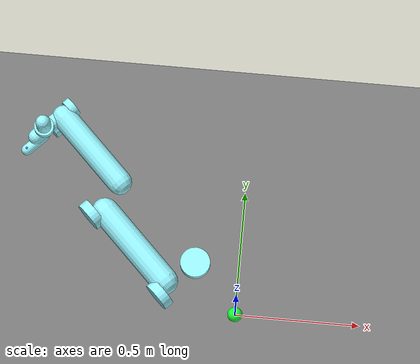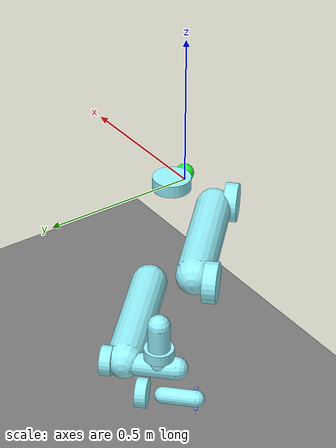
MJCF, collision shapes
<mujoco model="ur5">
    <compiler angle="radian" meshdir="meshes" />

    <option gravity="0 0 0" cone="elliptic" timestep="0.02" />

    <size njmax="500" nconmax="100" />

    <visual>
        <map znear="0.001" />
    </visual>

    <default>
        <light castshadow="false" diffuse="1 1 1" />
        <joint frictionloss="1" damping="1" />
        <camera fovy="60" />
        <motor gear="0.8"/>
        <velocity kv="10"/>
        <position kp="5"/>
    </default>

    <asset>
        <mesh file="base.stl" />
        <mesh file="shoulder.stl" />
        <mesh file="upperarm.stl" />
        <mesh file="forearm.stl" />
        <mesh file="wrist1.stl" />
        <mesh file="wrist2.stl" />
        <mesh file="wrist3.stl" />
        <mesh file="kinova_robotiq_coupler.stl" />
        <mesh file="robotiq_85_base_link.stl" />
        <mesh file="robotiq_85_finger_link.stl" />
        <mesh file="robotiq_85_finger_tip_link.stl" />
        <mesh file="robotiq_85_inner_knuckle_link.stl" />
        <mesh file="robotiq_85_knuckle_link.stl" />
        <material name="RobMat" specular="0.9" shininess="0.5" reflectance="0" rgba="0.7 0.7 0.7 1" emission="0.1" />
        <material name="GriMat" specular="0.9" shininess="0.5" reflectance="0" rgba="0.1 0.1 0.1 1" emission="0.1" />
        <material name="BasketMat" specular="0" shininess="0" reflectance="0" rgba="0.26 0.16 0.16796875 1" emission="0" />
        <material name="Light" specular="0" shininess="0.6" reflectance="0.9" rgba="0.5 0.5 1 1" emission="0.7" />
        <texture name="sky_tex" type="skybox" builtin="gradient" width="512" height="512" rgb1="0.86 0.90 0.98" rgb2="0.22 0.28 0.36" />
        <texture name="plane_tex" type="2d" builtin="checker" width="256" height="256" rgb1="0.12 0.12 0.12" rgb2="0.84 0.84 0.84" mark="cross" markrgb="0.8 0.8 0.8" />
        <material name="plane_mat" reflectance="0.3" texture="plane_tex" texrepeat="4 4" texuniform="true" />
    </asset>

    <worldbody>
        <body pos="-0.16 0.90 0.02" euler="4.71238898 0 3.14159265">
            <body euler="0 -0.82 0">
                <camera name="workbench_camera" euler="0.25 0 0" fovy="43" />
            </body>
        </body>
        <body pos="-1 1.52 0.64" euler="4.71238898 0 3.14159265">
            <body euler="-0.23 0 0">
                <camera name="upper_camera" euler="0 0.09 0" fovy="41" />
            </body>
        </body>

        <light directional="true" ambient=".3 .3 .3" pos="30 30 30" dir="0 -.5 -1" diffuse=".5 .5 .5" specular=".5 .5 .5" />
        <light directional="false" pos="-0.5 0.5 1.5" dir="0 -1 0" diffuse=".3 .3 .3" specular=".2 .2 .2" />
        <geom name="workbench_down" pos="-0.6 0.6 -0.25" size="0.6 0.6 0.25" type="box" rgba="0 0 0 0" material="BasketMat" contype="0" conaffinity="0" />
        <geom name="floor" pos="0 0 -0.66" size="0 0 0.25" type="plane" material="plane_mat" contype="1" conaffinity="1" />
        <geom name="wall_1" pos="0 -1.4 1" size="2.5 2.5 1" type="plane" quat="0.707107 -0.707107 0 0" rgba="0.95 0.95 0.95 0" material="BasketMat" contype="0" conaffinity="0" />
        <geom name="wall_2" pos="-2.185 0 1" size="2.5 2.5 1" type="plane" quat="0.707107 0 0.707107 0" rgba="0.95 0.95 0.95 0" material="BasketMat" contype="0" conaffinity="0" />

        <body name="base_link" pos="-0.175 0.175 0" quat="0.3826834324 0 0 0.9238795325" >
            <inertial pos="0 0 0" quat="0.5 0.5 -0.5 0.5" mass="4" diaginertia="0.0072 0.00443333 0.00443333" />
            <geom name="base_mesh" type="mesh" mesh="base" material="RobMat" contype="0" conaffinity="0" />
            <geom name="base_cap" type="cylinder" pos="0 0 0.14" size="0.06 0.02" rgba="0.596 0.96 1 1" material="RobMat" />

            <body name="shoulder_link" pos="0 0 0.089159">
                <inertial pos="0 0 0" mass="3.7" diaginertia="0.0102675 0.0102675 0.00666" />
                <geom name="shoulder_mesh" type="mesh" mesh="shoulder" material="RobMat" contype="0" conaffinity="0" />
                <geom name="shoulder_cap" type="cylinder" pos="0 0.185 0" quat="0.707107 0.707107 0 0" size="0.06 0.02" rgba="0.596 0.96 1 1" material="RobMat" />
                <joint name="joint1" pos="0 0 0" axis="0 0 1" />

                <body name="upper_arm_link" pos="0 0.13585 0" quat="0.707107 0 0.707107 0">
                    <inertial pos="0 0 0.28" mass="8.393" diaginertia="0.226891 0.226891 0.0151074" />
                    <geom name="upperarm_mesh" type="mesh" mesh="upperarm" material="RobMat" contype="0" conaffinity="0" />
                    <geom name="upperarm_col" type="capsule" fromto="0 0 0.03 0 0 0.40" size="0.055" rgba="0.596 0.96 1 0.0" material="RobMat" />
                    <joint name="joint2" pos="0 0 0" axis="0 1 0" />

                    <body name="forearm_link" pos="0 -0.1197 0.425">
                        <inertial pos="0 0 0.25" mass="2.275" diaginertia="0.0494433 0.0494433 0.004095" />
                        <geom name="forearm_mesh" type="mesh" mesh="forearm" material="RobMat" contype="0" conaffinity="0" />

                        <!--camera name="forearm_camera" pos="0 0.1 0.07" euler="3.14159265 0 1.570796" /-->

                        <geom name="forearm_cap" type="cylinder" pos="0 0.17 0" quat="0.707107 0.707107 0 0" size="0.06 0.02" rgba="0.596 0.96 1 1" material="RobMat" />
                        <geom name="forearm_col" type="capsule" fromto="0 0 0.03 0 0 0.38" size="0.05" rgba="0.596 0.96 1 0.0" material="RobMat" />
                        <joint name="joint3" pos="0 0 0" axis="0 1 0" />

                        <body name="wrist1_link" pos="0 0 0.39225" quat="0.707107 0 0.707107 0">
                            <inertial pos="0 0 0" quat="0.5 0.5 -0.5 0.5" mass="1.219" diaginertia="0.21942 0.111173 0.111173" />
                            <geom name="wrist1_mesh" type="mesh" mesh="wrist1" material="RobMat" contype="0" conaffinity="0" />
                            <geom name="wrist1_cap" type="cylinder" pos="0 -0.045 0" quat="0.707107 0.707107 0 0" size="0.04 0.015" rgba="0.596 0.96 1 1" material="RobMat" />
                            <geom name="wrist1_col" type="capsule" fromto="0 0.01 0 0 0.14 0" size="0.03" rgba="0.596 0.96 1 0.0" material="RobMat" />
                            <joint name="joint4" pos="0 0 0" axis="0 1 0" />

                            <body name="wrist2_link" pos="0 0.093 0">
                                <inertial pos="0 0 0" quat="0.5 0.5 -0.5 0.5" mass="1.219" diaginertia="0.21942 0.111173 0.111173" />
                                <geom name="wrist2_mesh" type="mesh" mesh="wrist2" material="RobMat" contype="0" conaffinity="0" />
                                <geom name="wrist2_cap" type="cylinder" pos="0 0 -0.045" quat="0.707107 0 0 0.707107" size="0.04 0.015" rgba="0.596 0.96 1 1" material="RobMat" />
                                <geom name="wrist2_col" type="capsule" fromto="0 0 -0.01 0 0 -0.13" size="0.03" rgba="0.596 0.96 1 0.0" material="RobMat" />
                                <joint name="joint5" pos="0 0 0" axis="0 0 1" />

                                <body name="wrist3_link" pos="0 0 0.09465" quat="0.707107 0 -0.707107 0" >
                                    <inertial pos="0 0 0" quat="0.5 0.5 -0.5 0.5" mass="0.1879" diaginertia="0.033822 0.0171365 0.0171365" />
                                    <geom name="wrist3_mesh" type="mesh" mesh="wrist3" material="RobMat" contype="0" conaffinity="0" />
                                    <geom name="wrist3_cap" type="cylinder" pos="0 -0.045 0" quat="0.707107 0.707107 0 0" size="0.04 0.015" rgba="0.596 0.96 1 1" material="RobMat" />
                                    <geom name="wrist3_col" type="capsule" fromto="0 0.01 0 0 0.10 0" size="0.022" rgba="0.596 0.96 1 0.0" material="RobMat" />
                                    <joint name="joint6" pos="0 0 0" axis="0 1 0" />

                                    <body name="ee_link" pos="0 0.0823 0" quat="0.707107 -0.707107 0 0">
                                        <inertial pos="0 0 0" mass="0.15" diaginertia="0.0001 0.0001 0.0001" />

                                        <!--camera name="gripper_camera" euler="0 3.14159265 0" fovy="63.5" /-->
                                        <geom name="light_1" type="sphere" size="0.005" pos="0.035 0 0.0166" material="Light" contype="0" conaffinity="0" />
                                        <geom name="light_2" type="sphere" size="0.005" pos="-0.035 0 0.0166" material="Light" contype="0" conaffinity="0" />
                                        <!--
                                        原来的 Robotiq 夹爪整段先从主线模型里拿掉。
                                        当前任务只保留一个简单的末端参考体，训练时用 ee_link 原点作为参考点。
                                        -->
                                        <geom name="ee_tip_vis" type="sphere" pos="0 0 0" size="0.018" rgba="0.9 0.9 0.9 1" material="GriMat" contype="0" conaffinity="0" />
                                        <geom name="ee_tip_col" type="sphere" pos="0 0 0" size="0.018" rgba="0.9 0.9 0.9 0" material="GriMat" />
                                    </body>
                                </body>
                            </body>
                        </body>
                    </body>
                </body>
            </body>
        </body>

        <body name="target_body_1" pos="0 0 0.025">
            <geom name="target_1" pos="0 0 0" size="0.03" type="sphere" rgba="0.1 1.0 0.2 0.0" contype="1" conaffinity="1" />
            <site name="target_site_1" pos="0 0 0" size="0.03" type="sphere" rgba="0.1 1.0 0.2 0.0" />
            <joint name="free_x_1" pos="0 0 0" type="slide" axis="1 0 0" frictionloss="0" damping="0" />
            <joint name="free_y_1" pos="0 0 0" type="slide" axis="0 1 0" frictionloss="0" damping="0" />
            <joint name="free_z_1" pos="0 0 0" type="slide" axis="0 0 1" frictionloss="0" damping="0" />
            <joint name="free_ball_1" pos="0 0 0" type="ball" frictionloss="0" damping="0" />
        </body>

        <body name="target_body_2" pos="0 0 0.025">
            <geom name="target_2" pos="0 0 0" size="0.025 0.025 0.025" type="box" rgba="0.01568627451 0.262745098 0.6392156863 0" contype="0" conaffinity="0" />
            <site name="target_site_2" pos="0 0 0" size="0.025 0.025 0.025" type="box" rgba="0.01568627451 0.262745098 0.6392156863 0" />
            <joint name="free_x_2" pos="0 0 0" type="slide" axis="1 0 0" frictionloss="0" damping="0" />
            <joint name="free_y_2" pos="0 0 0" type="slide" axis="0 1 0" frictionloss="0" damping="0" />
            <joint name="free_z_2" pos="0 0 0" type="slide" axis="0 0 1" frictionloss="0" damping="0" />
            <joint name="free_ball_2" pos="0 0 0" type="ball" frictionloss="0" damping="0" />
        </body>

        <body name="target_body_3" pos="0 0 0.025">
            <geom name="target_3" pos="0 0 0" size="0.025 0.025 0.025" type="box" rgba="0.08235294118 0.3058823529 0.03529411765 0" contype="0" conaffinity="0" />
            <site name="target_site_3" pos="0 0 0" size="0.025 0.025 0.025" type="box" rgba="0.08235294118 0.3058823529 0.03529411765 0" />
            <joint name="free_x_3" pos="0 0 0" type="slide" axis="1 0 0" frictionloss="0" damping="0" />
            <joint name="free_y_3" pos="0 0 0" type="slide" axis="0 1 0" frictionloss="0" damping="0" />
            <joint name="free_z_3" pos="0 0 0" type="slide" axis="0 0 1" frictionloss="0" damping="0" />
            <joint name="free_ball_3" pos="0 0 0" type="ball" frictionloss="0" damping="0" />
        </body>

        <body name="target_body_4" pos="0 0 0.025">
            <geom name="target_4" pos="0 0 0" size="0.025 0.025 0.025" type="box" rgba="0.4941176471 0.1176470588 0.04705882353 0" contype="0" conaffinity="0" />
            <site name="target_site_4" pos="0 0 0" size="0.025 0.025 0.025" type="box" rgba="0.4941176471 0.1176470588 0.04705882353 0" />
            <joint name="free_x_4" pos="0 0 0" type="slide" axis="1 0 0" frictionloss="0" damping="0" />
            <joint name="free_y_4" pos="0 0 0" type="slide" axis="0 1 0" frictionloss="0" damping="0" />
            <joint name="free_z_4" pos="0 0 0" type="slide" axis="0 0 1" frictionloss="0" damping="0" />
            <joint name="free_ball_4" pos="0 0 0" type="ball" frictionloss="0" damping="0" />
        </body>

    </worldbody>

    <equality>
    </equality>

    <actuator>
        <!--velocity name="gripper_velocity" joint="gripper_joint_left" gear="0.04" /-->

        <motor name="gravity_1" joint="free_z_1" gear="1 0 0 0 0 0" />
        <motor name="gravity_2" joint="free_z_2" gear="1 0 0 0 0 0" />
        <motor name="gravity_3" joint="free_z_3" gear="1 0 0 0 0 0" />
        <motor name="gravity_4" joint="free_z_4" gear="1 0 0 0 0 0" />
        <motor name="joint1_motor" joint="joint1" gear="1.2"/>
        <motor name="joint2_motor" joint="joint2"/>
        <motor name="joint3_motor" joint="joint3"/>
        <motor name="joint4_motor" joint="joint4"/>
        <motor name="joint5_motor" joint="joint5"/>
        <motor name="joint6_motor" joint="joint6"/>

    </actuator>

    <sensor>
        <touch name="touch_target_1" site="target_site_1" />
        <touch name="touch_target_2" site="target_site_2" />
        <touch name="touch_target_3" site="target_site_3" />
        <touch name="touch_target_4" site="target_site_4" />
    </sensor>
</mujoco>
